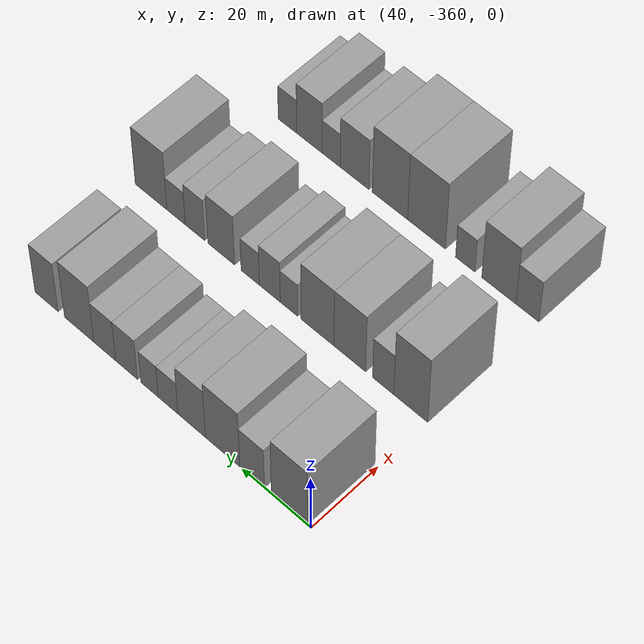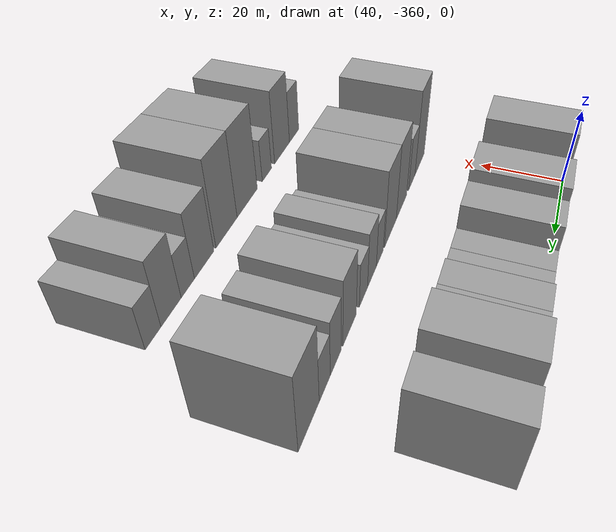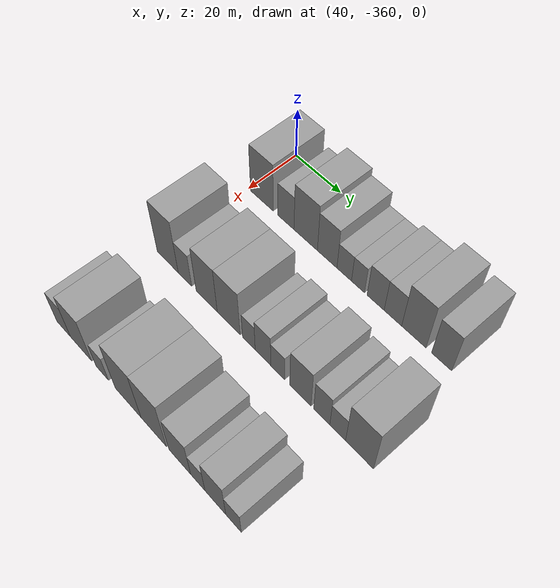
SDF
<sdf version="1.6">
 <world name="default">
  <model name="building_1">
   <static>1</static>
   <pose>50.0000 -353.7847 0 0.000000 0.000000 0.000000</pose>
   <link name="link">
    <pose>0 0 10.50 0 0 0</pose>
    <collision name="collision"><geometry><box><size>20.0000 10.4306 21.0000</size></box></geometry></collision>
    <visual name="visual">
     <cast_shadows>0</cast_shadows>
     <geometry><box><size>20.0000 10.4306 21.0000</size></box></geometry>
     <material>
      <script>
       <uri>model://grey_wall/materials/scripts</uri>
       <uri>model://grey_wall/materials/textures</uri>
       <name>vrc/grey_wall</name>
      </script>
     </material>
    </visual>
   </link>
  </model>
  <model name="building_2">
   <static>1</static>
   <pose>50.0000 -342.9612 0 0.000000 0.000000 0.000000</pose>
   <link name="link">
    <pose>0 0 7.50 0 0 0</pose>
    <collision name="collision"><geometry><box><size>20.0000 7.2164 15.0000</size></box></geometry></collision>
    <visual name="visual">
     <cast_shadows>0</cast_shadows>
     <geometry><box><size>20.0000 7.2164 15.0000</size></box></geometry>
     <material>
      <script>
       <uri>model://grey_wall/materials/scripts</uri>
       <uri>model://grey_wall/materials/textures</uri>
       <name>vrc/grey_wall</name>
      </script>
     </material>
    </visual>
   </link>
  </model>
  <model name="building_3">
   <static>1</static>
   <pose>50.0000 -334.2786 0 0.000000 0.000000 0.000000</pose>
   <link name="link">
    <pose>0 0 10.50 0 0 0</pose>
    <collision name="collision"><geometry><box><size>20.0000 10.1488 21.0000</size></box></geometry></collision>
    <visual name="visual">
     <cast_shadows>0</cast_shadows>
     <geometry><box><size>20.0000 10.1488 21.0000</size></box></geometry>
     <material>
      <script>
       <uri>model://grey_wall/materials/scripts</uri>
       <uri>model://grey_wall/materials/textures</uri>
       <name>vrc/grey_wall</name>
      </script>
     </material>
    </visual>
   </link>
  </model>
  <model name="building_4">
   <static>1</static>
   <pose>50.0000 -325.1051 0 0.000000 0.000000 0.000000</pose>
   <link name="link">
    <pose>0 0 9.00 0 0 0</pose>
    <collision name="collision"><geometry><box><size>20.0000 8.1981 18.0000</size></box></geometry></collision>
    <visual name="visual">
     <cast_shadows>0</cast_shadows>
     <geometry><box><size>20.0000 8.1981 18.0000</size></box></geometry>
     <material>
      <script>
       <uri>model://grey_wall/materials/scripts</uri>
       <uri>model://grey_wall/materials/textures</uri>
       <name>vrc/grey_wall</name>
      </script>
     </material>
    </visual>
   </link>
  </model>
  <model name="building_5">
   <static>1</static>
   <pose>50.0000 -318.0241 0 0.000000 0.000000 0.000000</pose>
   <link name="link">
    <pose>0 0 6.00 0 0 0</pose>
    <collision name="collision"><geometry><box><size>20.0000 5.9638 12.0000</size></box></geometry></collision>
    <visual name="visual">
     <cast_shadows>0</cast_shadows>
     <geometry><box><size>20.0000 5.9638 12.0000</size></box></geometry>
     <material>
      <script>
       <uri>model://grey_wall/materials/scripts</uri>
       <uri>model://grey_wall/materials/textures</uri>
       <name>vrc/grey_wall</name>
      </script>
     </material>
    </visual>
   </link>
  </model>
  <model name="building_6">
   <static>1</static>
   <pose>50.0000 -312.4131 0 0.000000 0.000000 0.000000</pose>
   <link name="link">
    <pose>0 0 6.00 0 0 0</pose>
    <collision name="collision"><geometry><box><size>20.0000 5.2583 12.0000</size></box></geometry></collision>
    <visual name="visual">
     <cast_shadows>0</cast_shadows>
     <geometry><box><size>20.0000 5.2583 12.0000</size></box></geometry>
     <material>
      <script>
       <uri>model://grey_wall/materials/scripts</uri>
       <uri>model://grey_wall/materials/textures</uri>
       <name>vrc/grey_wall</name>
      </script>
     </material>
    </visual>
   </link>
  </model>
  <model name="building_7">
   <static>1</static>
   <pose>50.0000 -305.4140 0 0.000000 0.000000 0.000000</pose>
   <link name="link">
    <pose>0 0 7.50 0 0 0</pose>
    <collision name="collision"><geometry><box><size>20.0000 6.7399 15.0000</size></box></geometry></collision>
    <visual name="visual">
     <cast_shadows>0</cast_shadows>
     <geometry><box><size>20.0000 6.7399 15.0000</size></box></geometry>
     <material>
      <script>
       <uri>model://grey_wall/materials/scripts</uri>
       <uri>model://grey_wall/materials/textures</uri>
       <name>vrc/grey_wall</name>
      </script>
     </material>
    </visual>
   </link>
  </model>
  <model name="building_8">
   <static>1</static>
   <pose>50.0000 -298.6672 0 0.000000 0.000000 0.000000</pose>
   <link name="link">
    <pose>0 0 7.50 0 0 0</pose>
    <collision name="collision"><geometry><box><size>20.0000 6.7537 15.0000</size></box></geometry></collision>
    <visual name="visual">
     <cast_shadows>0</cast_shadows>
     <geometry><box><size>20.0000 6.7537 15.0000</size></box></geometry>
     <material>
      <script>
       <uri>model://grey_wall/materials/scripts</uri>
       <uri>model://grey_wall/materials/textures</uri>
       <name>vrc/grey_wall</name>
      </script>
     </material>
    </visual>
   </link>
  </model>
  <model name="building_9">
   <static>1</static>
   <pose>50.0000 -290.7151 0 0.000000 0.000000 0.000000</pose>
   <link name="link">
    <pose>0 0 10.50 0 0 0</pose>
    <collision name="collision"><geometry><box><size>20.0000 9.1503 21.0000</size></box></geometry></collision>
    <visual name="visual">
     <cast_shadows>0</cast_shadows>
     <geometry><box><size>20.0000 9.1503 21.0000</size></box></geometry>
     <material>
      <script>
       <uri>model://grey_wall/materials/scripts</uri>
       <uri>model://grey_wall/materials/textures</uri>
       <name>vrc/grey_wall</name>
      </script>
     </material>
    </visual>
   </link>
  </model>
  <model name="building_10">
   <static>1</static>
   <pose>50.0000 -280.4704 0 0.000000 0.000000 0.000000</pose>
   <link name="link">
    <pose>0 0 9.00 0 0 0</pose>
    <collision name="collision"><geometry><box><size>20.0000 7.3392 18.0000</size></box></geometry></collision>
    <visual name="visual">
     <cast_shadows>0</cast_shadows>
     <geometry><box><size>20.0000 7.3392 18.0000</size></box></geometry>
     <material>
      <script>
       <uri>model://grey_wall/materials/scripts</uri>
       <uri>model://grey_wall/materials/textures</uri>
       <name>vrc/grey_wall</name>
      </script>
     </material>
    </visual>
   </link>
  </model>
  <model name="building_84">
   <static>1</static>
   <pose>85.0000 -355.1100 0 0.000000 0.000000 0.000000</pose>
   <link name="link">
    <pose>0 0 12.00 0 0 0</pose>
    <collision name="collision"><geometry><box><size>20.0000 9.7801 24.0000</size></box></geometry></collision>
    <visual name="visual">
     <cast_shadows>0</cast_shadows>
     <geometry><box><size>20.0000 9.7801 24.0000</size></box></geometry>
     <material>
      <script>
       <uri>model://grey_wall/materials/scripts</uri>
       <uri>model://grey_wall/materials/textures</uri>
       <name>vrc/grey_wall</name>
      </script>
     </material>
    </visual>
   </link>
  </model>
  <model name="building_85">
   <static>1</static>
   <pose>85.0000 -347.1397 0 0.000000 0.000000 0.000000</pose>
   <link name="link">
    <pose>0 0 7.50 0 0 0</pose>
    <collision name="collision"><geometry><box><size>20.0000 6.1606 15.0000</size></box></geometry></collision>
    <visual name="visual">
     <cast_shadows>0</cast_shadows>
     <geometry><box><size>20.0000 6.1606 15.0000</size></box></geometry>
     <material>
      <script>
       <uri>model://grey_wall/materials/scripts</uri>
       <uri>model://grey_wall/materials/textures</uri>
       <name>vrc/grey_wall</name>
      </script>
     </material>
    </visual>
   </link>
  </model>
  <model name="building_86">
   <static>1</static>
   <pose>85.0000 -337.3845 0 0.000000 0.000000 0.000000</pose>
   <link name="link">
    <pose>0 0 10.50 0 0 0</pose>
    <collision name="collision"><geometry><box><size>20.0000 9.3498 21.0000</size></box></geometry></collision>
    <visual name="visual">
     <cast_shadows>0</cast_shadows>
     <geometry><box><size>20.0000 9.3498 21.0000</size></box></geometry>
     <material>
      <script>
       <uri>model://grey_wall/materials/scripts</uri>
       <uri>model://grey_wall/materials/textures</uri>
       <name>vrc/grey_wall</name>
      </script>
     </material>
    </visual>
   </link>
  </model>
  <model name="building_87">
   <static>1</static>
   <pose>85.0000 -327.7934 0 0.000000 0.000000 0.000000</pose>
   <link name="link">
    <pose>0 0 10.50 0 0 0</pose>
    <collision name="collision"><geometry><box><size>20.0000 9.8323 21.0000</size></box></geometry></collision>
    <visual name="visual">
     <cast_shadows>0</cast_shadows>
     <geometry><box><size>20.0000 9.8323 21.0000</size></box></geometry>
     <material>
      <script>
       <uri>model://grey_wall/materials/scripts</uri>
       <uri>model://grey_wall/materials/textures</uri>
       <name>vrc/grey_wall</name>
      </script>
     </material>
    </visual>
   </link>
  </model>
  <model name="building_88">
   <static>1</static>
   <pose>85.0000 -319.2483 0 0.000000 0.000000 0.000000</pose>
   <link name="link">
    <pose>0 0 6.00 0 0 0</pose>
    <collision name="collision"><geometry><box><size>20.0000 5.2579 12.0000</size></box></geometry></collision>
    <visual name="visual">
     <cast_shadows>0</cast_shadows>
     <geometry><box><size>20.0000 5.2579 12.0000</size></box></geometry>
     <material>
      <script>
       <uri>model://grey_wall/materials/scripts</uri>
       <uri>model://grey_wall/materials/textures</uri>
       <name>vrc/grey_wall</name>
      </script>
     </material>
    </visual>
   </link>
  </model>
  <model name="building_89">
   <static>1</static>
   <pose>85.0000 -313.4360 0 0.000000 0.000000 0.000000</pose>
   <link name="link">
    <pose>0 0 7.50 0 0 0</pose>
    <collision name="collision"><geometry><box><size>20.0000 6.3667 15.0000</size></box></geometry></collision>
    <visual name="visual">
     <cast_shadows>0</cast_shadows>
     <geometry><box><size>20.0000 6.3667 15.0000</size></box></geometry>
     <material>
      <script>
       <uri>model://grey_wall/materials/scripts</uri>
       <uri>model://grey_wall/materials/textures</uri>
       <name>vrc/grey_wall</name>
      </script>
     </material>
    </visual>
   </link>
  </model>
  <model name="building_90">
   <static>1</static>
   <pose>85.0000 -307.4719 0 0.000000 0.000000 0.000000</pose>
   <link name="link">
    <pose>0 0 6.00 0 0 0</pose>
    <collision name="collision"><geometry><box><size>20.0000 5.5613 12.0000</size></box></geometry></collision>
    <visual name="visual">
     <cast_shadows>0</cast_shadows>
     <geometry><box><size>20.0000 5.5613 12.0000</size></box></geometry>
     <material>
      <script>
       <uri>model://grey_wall/materials/scripts</uri>
       <uri>model://grey_wall/materials/textures</uri>
       <name>vrc/grey_wall</name>
      </script>
     </material>
    </visual>
   </link>
  </model>
  <model name="building_91">
   <static>1</static>
   <pose>85.0000 -298.5580 0 0.000000 0.000000 0.000000</pose>
   <link name="link">
    <pose>0 0 9.00 0 0 0</pose>
    <collision name="collision"><geometry><box><size>20.0000 8.2666 18.0000</size></box></geometry></collision>
    <visual name="visual">
     <cast_shadows>0</cast_shadows>
     <geometry><box><size>20.0000 8.2666 18.0000</size></box></geometry>
     <material>
      <script>
       <uri>model://grey_wall/materials/scripts</uri>
       <uri>model://grey_wall/materials/textures</uri>
       <name>vrc/grey_wall</name>
      </script>
     </material>
    </visual>
   </link>
  </model>
  <model name="building_92">
   <static>1</static>
   <pose>85.0000 -290.3776 0 0.000000 0.000000 0.000000</pose>
   <link name="link">
    <pose>0 0 7.50 0 0 0</pose>
    <collision name="collision"><geometry><box><size>20.0000 6.0943 15.0000</size></box></geometry></collision>
    <visual name="visual">
     <cast_shadows>0</cast_shadows>
     <geometry><box><size>20.0000 6.0943 15.0000</size></box></geometry>
     <material>
      <script>
       <uri>model://grey_wall/materials/scripts</uri>
       <uri>model://grey_wall/materials/textures</uri>
       <name>vrc/grey_wall</name>
      </script>
     </material>
    </visual>
   </link>
  </model>
  <model name="building_93">
   <static>1</static>
   <pose>85.0000 -284.4278 0 0.000000 0.000000 0.000000</pose>
   <link name="link">
    <pose>0 0 6.00 0 0 0</pose>
    <collision name="collision"><geometry><box><size>20.0000 5.8053 12.0000</size></box></geometry></collision>
    <visual name="visual">
     <cast_shadows>0</cast_shadows>
     <geometry><box><size>20.0000 5.8053 12.0000</size></box></geometry>
     <material>
      <script>
       <uri>model://grey_wall/materials/scripts</uri>
       <uri>model://grey_wall/materials/textures</uri>
       <name>vrc/grey_wall</name>
      </script>
     </material>
    </visual>
   </link>
  </model>
  <model name="building_94">
   <static>1</static>
   <pose>85.0000 -276.5124 0 0.000000 0.000000 0.000000</pose>
   <link name="link">
    <pose>0 0 10.50 0 0 0</pose>
    <collision name="collision"><geometry><box><size>20.0000 10.0254 21.0000</size></box></geometry></collision>
    <visual name="visual">
     <cast_shadows>0</cast_shadows>
     <geometry><box><size>20.0000 10.0254 21.0000</size></box></geometry>
     <material>
      <script>
       <uri>model://grey_wall/materials/scripts</uri>
       <uri>model://grey_wall/materials/textures</uri>
       <name>vrc/grey_wall</name>
      </script>
     </material>
    </visual>
   </link>
  </model>
  <model name="building_167">
   <static>1</static>
   <pose>120.0000 -356.6731 0 0.000000 0.000000 0.000000</pose>
   <link name="link">
    <pose>0 0 7.50 0 0 0</pose>
    <collision name="collision"><geometry><box><size>20.0000 6.6537 15.0000</size></box></geometry></collision>
    <visual name="visual">
     <cast_shadows>0</cast_shadows>
     <geometry><box><size>20.0000 6.6537 15.0000</size></box></geometry>
     <material>
      <script>
       <uri>model://grey_wall/materials/scripts</uri>
       <uri>model://grey_wall/materials/textures</uri>
       <name>vrc/grey_wall</name>
      </script>
     </material>
    </visual>
   </link>
  </model>
  <model name="building_168">
   <static>1</static>
   <pose>120.0000 -348.3705 0 0.000000 0.000000 0.000000</pose>
   <link name="link">
    <pose>0 0 10.50 0 0 0</pose>
    <collision name="collision"><geometry><box><size>20.0000 9.9516 21.0000</size></box></geometry></collision>
    <visual name="visual">
     <cast_shadows>0</cast_shadows>
     <geometry><box><size>20.0000 9.9516 21.0000</size></box></geometry>
     <material>
      <script>
       <uri>model://grey_wall/materials/scripts</uri>
       <uri>model://grey_wall/materials/textures</uri>
       <name>vrc/grey_wall</name>
      </script>
     </material>
    </visual>
   </link>
  </model>
  <model name="building_169">
   <static>1</static>
   <pose>120.0000 -338.5515 0 0.000000 0.000000 0.000000</pose>
   <link name="link">
    <pose>0 0 6.00 0 0 0</pose>
    <collision name="collision"><geometry><box><size>20.0000 5.6863 12.0000</size></box></geometry></collision>
    <visual name="visual">
     <cast_shadows>0</cast_shadows>
     <geometry><box><size>20.0000 5.6863 12.0000</size></box></geometry>
     <material>
      <script>
       <uri>model://grey_wall/materials/scripts</uri>
       <uri>model://grey_wall/materials/textures</uri>
       <name>vrc/grey_wall</name>
      </script>
     </material>
    </visual>
   </link>
  </model>
  <model name="building_170">
   <static>1</static>
   <pose>120.0000 -327.0534 0 0.000000 0.000000 0.000000</pose>
   <link name="link">
    <pose>0 0 12.00 0 0 0</pose>
    <collision name="collision"><geometry><box><size>20.0000 11.3098 24.0000</size></box></geometry></collision>
    <visual name="visual">
     <cast_shadows>0</cast_shadows>
     <geometry><box><size>20.0000 11.3098 24.0000</size></box></geometry>
     <material>
      <script>
       <uri>model://grey_wall/materials/scripts</uri>
       <uri>model://grey_wall/materials/textures</uri>
       <name>vrc/grey_wall</name>
      </script>
     </material>
    </visual>
   </link>
  </model>
  <model name="building_171">
   <static>1</static>
   <pose>120.0000 -316.0463 0 0.000000 0.000000 0.000000</pose>
   <link name="link">
    <pose>0 0 12.00 0 0 0</pose>
    <collision name="collision"><geometry><box><size>20.0000 10.7045 24.0000</size></box></geometry></collision>
    <visual name="visual">
     <cast_shadows>0</cast_shadows>
     <geometry><box><size>20.0000 10.7045 24.0000</size></box></geometry>
     <material>
      <script>
       <uri>model://grey_wall/materials/scripts</uri>
       <uri>model://grey_wall/materials/textures</uri>
       <name>vrc/grey_wall</name>
      </script>
     </material>
    </visual>
   </link>
  </model>
  <model name="building_172">
   <static>1</static>
   <pose>120.0000 -305.2733 0 0.000000 0.000000 0.000000</pose>
   <link name="link">
    <pose>0 0 9.00 0 0 0</pose>
    <collision name="collision"><geometry><box><size>20.0000 8.8414 18.0000</size></box></geometry></collision>
    <visual name="visual">
     <cast_shadows>0</cast_shadows>
     <geometry><box><size>20.0000 8.8414 18.0000</size></box></geometry>
     <material>
      <script>
       <uri>model://grey_wall/materials/scripts</uri>
       <uri>model://grey_wall/materials/textures</uri>
       <name>vrc/grey_wall</name>
      </script>
     </material>
    </visual>
   </link>
  </model>
  <model name="building_173">
   <static>1</static>
   <pose>120.0000 -298.0367 0 0.000000 0.000000 0.000000</pose>
   <link name="link">
    <pose>0 0 6.00 0 0 0</pose>
    <collision name="collision"><geometry><box><size>20.0000 5.6318 12.0000</size></box></geometry></collision>
    <visual name="visual">
     <cast_shadows>0</cast_shadows>
     <geometry><box><size>20.0000 5.6318 12.0000</size></box></geometry>
     <material>
      <script>
       <uri>model://grey_wall/materials/scripts</uri>
       <uri>model://grey_wall/materials/textures</uri>
       <name>vrc/grey_wall</name>
      </script>
     </material>
    </visual>
   </link>
  </model>
  <model name="building_174">
   <static>1</static>
   <pose>120.0000 -291.2380 0 0.000000 0.000000 0.000000</pose>
   <link name="link">
    <pose>0 0 9.00 0 0 0</pose>
    <collision name="collision"><geometry><box><size>20.0000 7.9657 18.0000</size></box></geometry></collision>
    <visual name="visual">
     <cast_shadows>0</cast_shadows>
     <geometry><box><size>20.0000 7.9657 18.0000</size></box></geometry>
     <material>
      <script>
       <uri>model://grey_wall/materials/scripts</uri>
       <uri>model://grey_wall/materials/textures</uri>
       <name>vrc/grey_wall</name>
      </script>
     </material>
    </visual>
   </link>
  </model>
  <model name="building_175">
   <static>1</static>
   <pose>120.0000 -284.3565 0 0.000000 0.000000 0.000000</pose>
   <link name="link">
    <pose>0 0 6.00 0 0 0</pose>
    <collision name="collision"><geometry><box><size>20.0000 5.7972 12.0000</size></box></geometry></collision>
    <visual name="visual">
     <cast_shadows>0</cast_shadows>
     <geometry><box><size>20.0000 5.7972 12.0000</size></box></geometry>
     <material>
      <script>
       <uri>model://grey_wall/materials/scripts</uri>
       <uri>model://grey_wall/materials/textures</uri>
       <name>vrc/grey_wall</name>
      </script>
     </material>
    </visual>
   </link>
  </model>
 </world>
</sdf>
